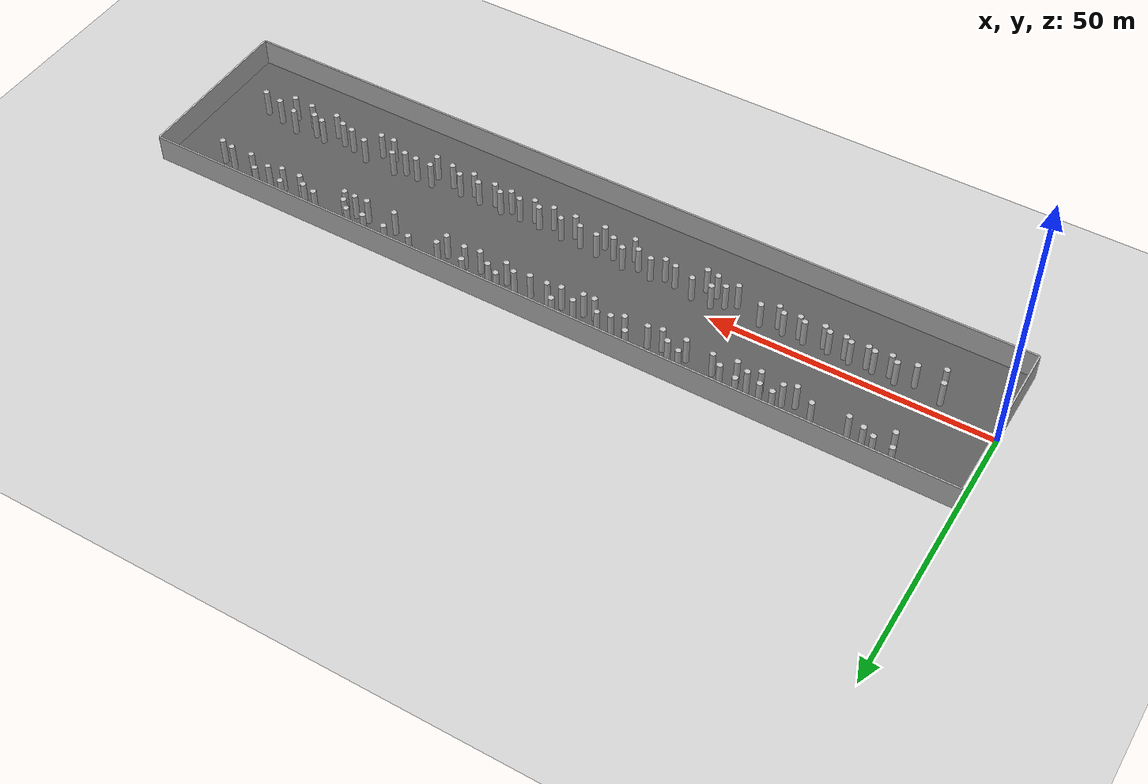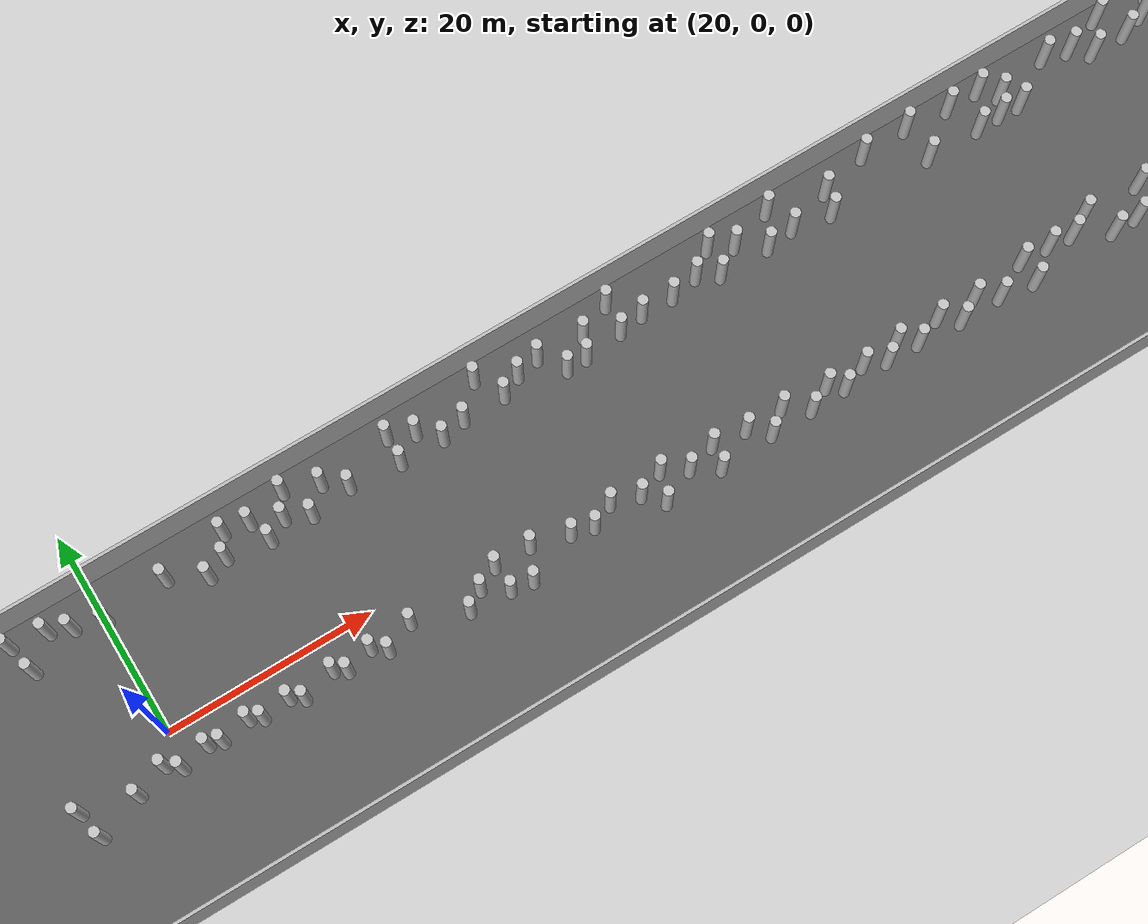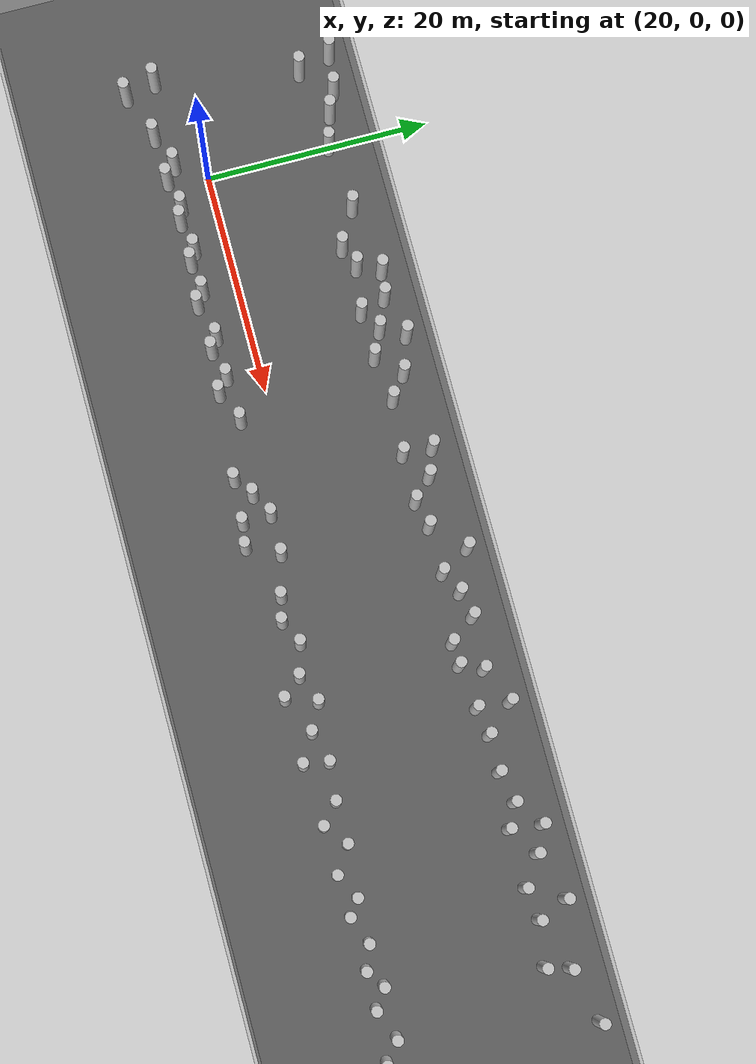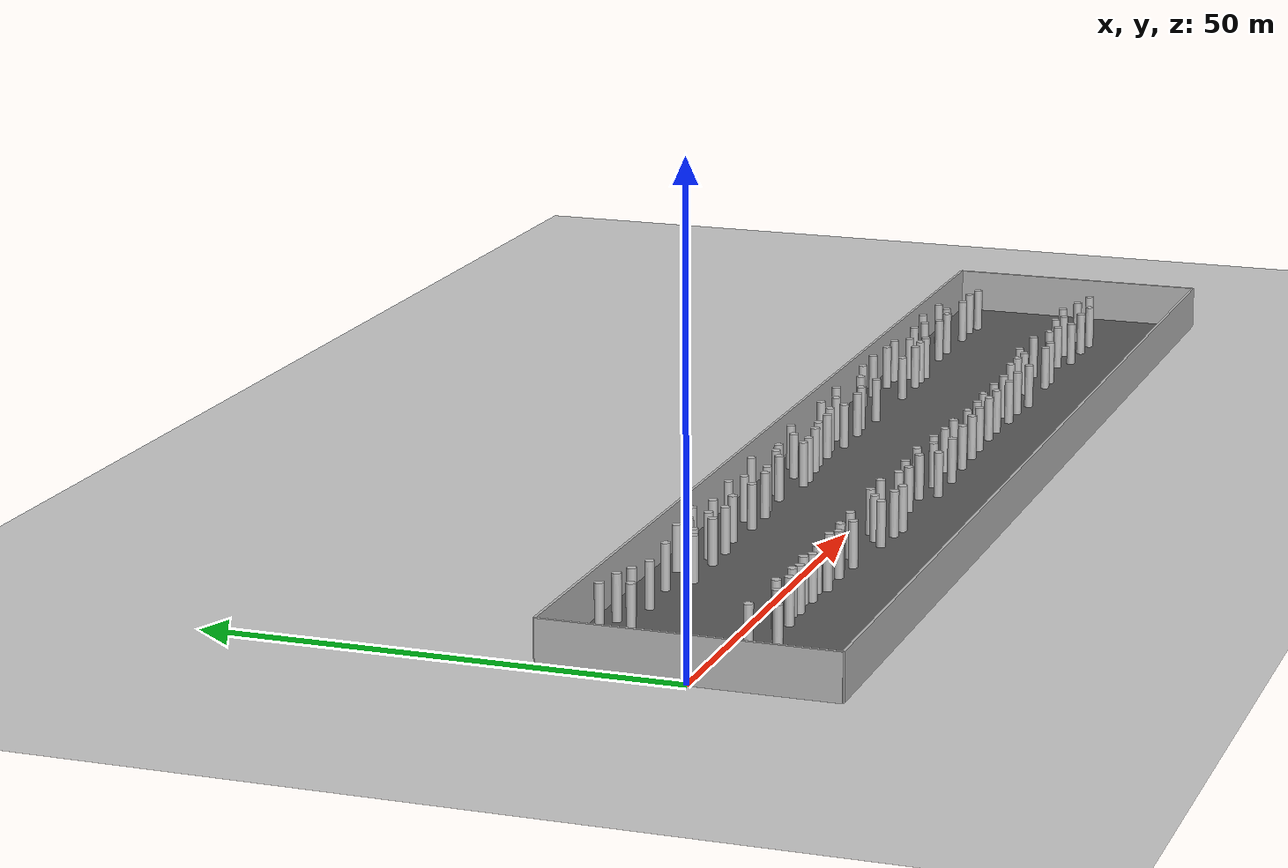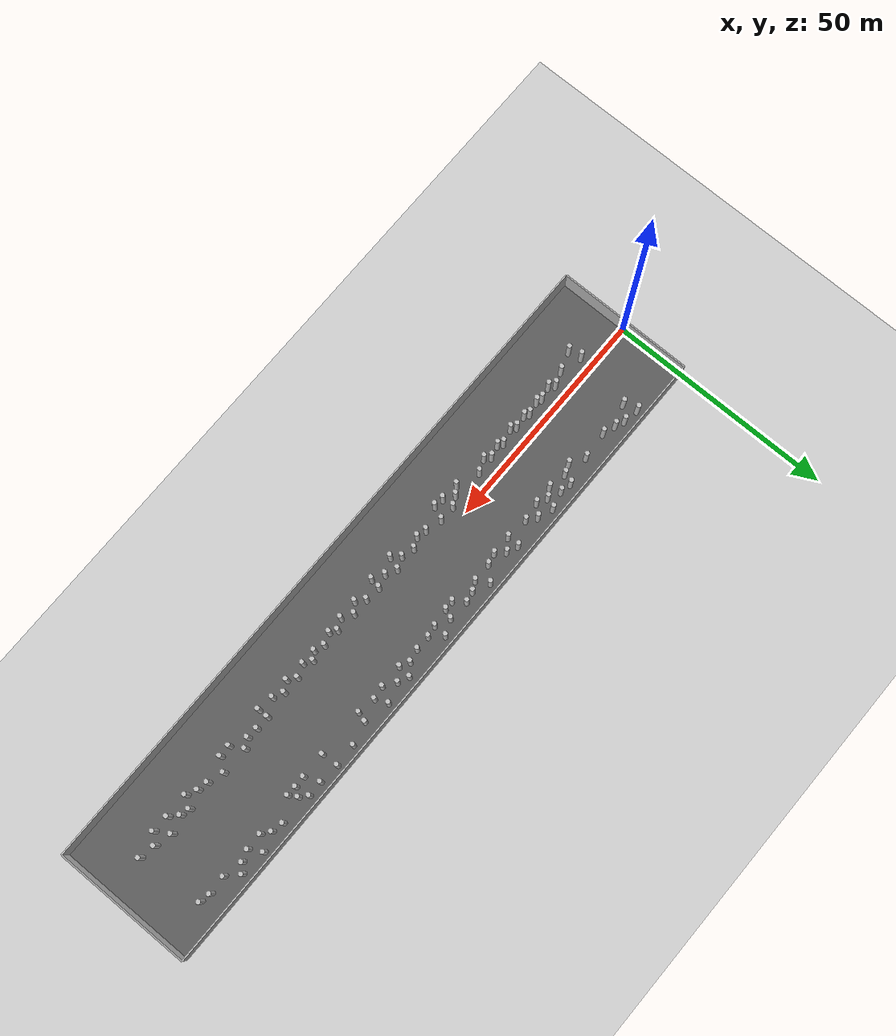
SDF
<?xml version="1.0" ?>
<sdf version="1.5">
  <world name="default">
    <plugin name="gazebo_ros_state" filename="libgazebo_ros_state.so">
      <ros>
        <namespace>/gazebo</namespace>
      </ros>
      <update_rate>20.0</update_rate>
    </plugin>

    <include><uri>model://sun</uri></include>
    <include><uri>model://ground_plane</uri></include>

    <model name="corridor_floor">
      <static>true</static>
      <pose>75 0 0.01 0 0 0</pose>
      <link name="link">
        <collision name="collision">
          <geometry><box><size>150 30 0.02</size></box></geometry>
        </collision>
        <visual name="visual">
          <geometry><box><size>150 30 0.02</size></box></geometry>
          <material>
            <ambient>0.25 0.25 0.25 1</ambient>
            <diffuse>0.35 0.35 0.35 1</diffuse>
          </material>
        </visual>
      </link>
    </model>

    <physics name="default_physics" default="0" type="ode">
      <gravity>0 0 -9.8066</gravity>
      <ode>
        <solver>
          <type>quick</type>
          <iters>10</iters>
          <sor>1.3</sor>
          <use_dynamic_moi_rescaling>0</use_dynamic_moi_rescaling>
        </solver>
        <constraints>
          <cfm>0</cfm>
          <erp>0.2</erp>
          <contact_max_correcting_vel>100</contact_max_correcting_vel>
          <contact_surface_layer>0.001</contact_surface_layer>
        </constraints>
      </ode>
      <max_step_size>0.004</max_step_size>
      <real_time_factor>1</real_time_factor>
      <real_time_update_rate>250</real_time_update_rate>
      <magnetic_field>6.0e-6 2.3e-5 -4.2e-5</magnetic_field>
    </physics>

    <model name="left_wall">
      <static>true</static>
      <pose>75 15.15 2.5 0 0 0</pose>
      <link name="link">
        <collision name="collision">
          <geometry><box><size>150 0.3 5</size></box></geometry>
        </collision>
        <visual name="visual">
          <geometry><box><size>150 0.3 5</size></box></geometry>
        </visual>
      </link>
    </model>

    <model name="right_wall">
      <static>true</static>
      <pose>75 -15.15 2.5 0 0 0</pose>
      <link name="link">
        <collision name="collision">
          <geometry><box><size>150 0.3 5</size></box></geometry>
        </collision>
        <visual name="visual">
          <geometry><box><size>150 0.3 5</size></box></geometry>
        </visual>
      </link>
    </model>

    <model name="start_wall">
      <static>true</static>
      <pose>0 0 2.5 0 0 0</pose>
      <link name="link">
        <collision name="collision">
          <geometry><box><size>0.3 30.3 5</size></box></geometry>
        </collision>
        <visual name="visual">
          <geometry><box><size>0.3 30.3 5</size></box></geometry>
        </visual>
      </link>
    </model>

    <model name="end_wall">
      <static>true</static>
      <pose>150 0 2.5 0 0 0</pose>
      <link name="link">
        <collision name="collision">
          <geometry><box><size>0.3 30.3 5</size></box></geometry>
        </collision>
        <visual name="visual">
          <geometry><box><size>0.3 30.3 5</size></box></geometry>
        </visual>
      </link>
    </model>

    <include><name>cylinder_000</name><uri>model://cylinder_r05_h5</uri><pose>15.530 -3.713 2.5 0 0 0</pose></include>
    <include><name>cylinder_001</name><uri>model://cylinder_r05_h5</uri><pose>18.520 -2.654 2.5 0 0 0</pose></include>
    <include><name>cylinder_002</name><uri>model://cylinder_r05_h5</uri><pose>19.731 -3.589 2.5 0 0 0</pose></include>
    <include><name>cylinder_003</name><uri>model://cylinder_r05_h5</uri><pose>22.476 -2.996 2.5 0 0 0</pose></include>
    <include><name>cylinder_004</name><uri>model://cylinder_r05_h5</uri><pose>23.695 -3.387 2.5 0 0 0</pose></include>
    <include><name>cylinder_005</name><uri>model://cylinder_r05_h5</uri><pose>26.490 -2.865 2.5 0 0 0</pose></include>
    <include><name>cylinder_006</name><uri>model://cylinder_r05_h5</uri><pose>27.580 -3.436 2.5 0 0 0</pose></include>
    <include><name>cylinder_007</name><uri>model://cylinder_r05_h5</uri><pose>30.289 -3.098 2.5 0 0 0</pose></include>
    <include><name>cylinder_008</name><uri>model://cylinder_r05_h5</uri><pose>31.408 -3.833 2.5 0 0 0</pose></include>
    <include><name>cylinder_009</name><uri>model://cylinder_r05_h5</uri><pose>34.617 -2.977 2.5 0 0 0</pose></include>
    <include><name>cylinder_010</name><uri>model://cylinder_r05_h5</uri><pose>35.685 -3.665 2.5 0 0 0</pose></include>
    <include><name>cylinder_011</name><uri>model://cylinder_r05_h5</uri><pose>38.311 -3.001 2.5 0 0 0</pose></include>
    <include><name>cylinder_012</name><uri>model://cylinder_r05_h5</uri><pose>39.546 -3.989 2.5 0 0 0</pose></include>
    <include><name>cylinder_013</name><uri>model://cylinder_r05_h5</uri><pose>42.334 -2.815 2.5 0 0 0</pose></include>
    <include><name>cylinder_014</name><uri>model://cylinder_r05_h5</uri><pose>70.064 -3.796 2.5 0 0 0</pose></include>
    <include><name>cylinder_015</name><uri>model://cylinder_r05_h5</uri><pose>65.189 -3.590 2.5 0 0 0</pose></include>
    <include><name>cylinder_016</name><uri>model://cylinder_r05_h5</uri><pose>60.253 -3.838 2.5 0 0 0</pose></include>
    <include><name>cylinder_017</name><uri>model://cylinder_r05_h5</uri><pose>48.960 -3.444 2.5 0 0 0</pose></include>
    <include><name>cylinder_018</name><uri>model://cylinder_r05_h5</uri><pose>53.235 -5.219 2.5 0 0 0</pose></include>
    <include><name>cylinder_019</name><uri>model://cylinder_r05_h5</uri><pose>72.877 -3.002 2.5 0 0 0</pose></include>
    <include><name>cylinder_020</name><uri>model://cylinder_r05_h5</uri><pose>51.134 -4.910 2.5 0 0 0</pose></include>
    <include><name>cylinder_021</name><uri>model://cylinder_r05_h5</uri><pose>58.144 -3.345 2.5 0 0 0</pose></include>
    <include><name>cylinder_022</name><uri>model://cylinder_r05_h5</uri><pose>51.032 -2.370 2.5 0 0 0</pose></include>
    <include><name>cylinder_023</name><uri>model://cylinder_r05_h5</uri><pose>66.755 -5.290 2.5 0 0 0</pose></include>
    <include><name>cylinder_024</name><uri>model://cylinder_r05_h5</uri><pose>62.463 -2.806 2.5 0 0 0</pose></include>
    <include><name>cylinder_025</name><uri>model://cylinder_r05_h5</uri><pose>47.236 -4.659 2.5 0 0 0</pose></include>
    <include><name>cylinder_026</name><uri>model://cylinder_r05_h5</uri><pose>54.580 -2.402 2.5 0 0 0</pose></include>
    <include><name>cylinder_027</name><uri>model://cylinder_r05_h5</uri><pose>72.503 -5.203 2.5 0 0 0</pose></include>
    <include><name>cylinder_028</name><uri>model://cylinder_r05_h5</uri><pose>67.703 -2.595 2.5 0 0 0</pose></include>
    <include><name>cylinder_029</name><uri>model://cylinder_r05_h5</uri><pose>76.200 -3.347 2.5 0 0 0</pose></include>
    <include><name>cylinder_030</name><uri>model://cylinder_r05_h5</uri><pose>77.964 -4.873 2.5 0 0 0</pose></include>
    <include><name>cylinder_031</name><uri>model://cylinder_r05_h5</uri><pose>79.903 -3.306 2.5 0 0 0</pose></include>
    <include><name>cylinder_032</name><uri>model://cylinder_r05_h5</uri><pose>82.180 -4.809 2.5 0 0 0</pose></include>
    <include><name>cylinder_033</name><uri>model://cylinder_r05_h5</uri><pose>84.408 -3.674 2.5 0 0 0</pose></include>
    <include><name>cylinder_034</name><uri>model://cylinder_r05_h5</uri><pose>85.792 -4.673 2.5 0 0 0</pose></include>
    <include><name>cylinder_035</name><uri>model://cylinder_r05_h5</uri><pose>88.265 -3.727 2.5 0 0 0</pose></include>
    <include><name>cylinder_036</name><uri>model://cylinder_r05_h5</uri><pose>90.380 -4.535 2.5 0 0 0</pose></include>
    <include><name>cylinder_037</name><uri>model://cylinder_r05_h5</uri><pose>91.970 -3.444 2.5 0 0 0</pose></include>
    <include><name>cylinder_038</name><uri>model://cylinder_r05_h5</uri><pose>93.668 -4.562 2.5 0 0 0</pose></include>
    <include><name>cylinder_039</name><uri>model://cylinder_r05_h5</uri><pose>96.356 -3.538 2.5 0 0 0</pose></include>
    <include><name>cylinder_040</name><uri>model://cylinder_r05_h5</uri><pose>98.096 -4.866 2.5 0 0 0</pose></include>
    <include><name>cylinder_041</name><uri>model://cylinder_r05_h5</uri><pose>100.221 -3.642 2.5 0 0 0</pose></include>
    <include><name>cylinder_042</name><uri>model://cylinder_r05_h5</uri><pose>102.346 -4.738 2.5 0 0 0</pose></include>
    <include><name>cylinder_043</name><uri>model://cylinder_r05_h5</uri><pose>132.144 -5.033 2.5 0 0 0</pose></include>
    <include><name>cylinder_044</name><uri>model://cylinder_r05_h5</uri><pose>108.763 -3.047 2.5 0 0 0</pose></include>
    <include><name>cylinder_045</name><uri>model://cylinder_r05_h5</uri><pose>117.213 -4.902 2.5 0 0 0</pose></include>
    <include><name>cylinder_046</name><uri>model://cylinder_r05_h5</uri><pose>126.893 -5.103 2.5 0 0 0</pose></include>
    <include><name>cylinder_047</name><uri>model://cylinder_r05_h5</uri><pose>124.702 -3.943 2.5 0 0 0</pose></include>
    <include><name>cylinder_048</name><uri>model://cylinder_r05_h5</uri><pose>105.801 -3.006 2.5 0 0 0</pose></include>
    <include><name>cylinder_049</name><uri>model://cylinder_r05_h5</uri><pose>122.461 -3.456 2.5 0 0 0</pose></include>
    <include><name>cylinder_050</name><uri>model://cylinder_r05_h5</uri><pose>114.672 -4.957 2.5 0 0 0</pose></include>
    <include><name>cylinder_051</name><uri>model://cylinder_r05_h5</uri><pose>128.393 -2.765 2.5 0 0 0</pose></include>
    <include><name>cylinder_052</name><uri>model://cylinder_r05_h5</uri><pose>130.324 -3.284 2.5 0 0 0</pose></include>
    <include><name>cylinder_053</name><uri>model://cylinder_r05_h5</uri><pose>119.134 -2.351 2.5 0 0 0</pose></include>
    <include><name>cylinder_054</name><uri>model://cylinder_r05_h5</uri><pose>134.058 -2.226 2.5 0 0 0</pose></include>
    <include><name>cylinder_055</name><uri>model://cylinder_r05_h5</uri><pose>113.124 -2.212 2.5 0 0 0</pose></include>
    <include><name>cylinder_056</name><uri>model://cylinder_r05_h5</uri><pose>105.840 -5.235 2.5 0 0 0</pose></include>
    <include><name>cylinder_057</name><uri>model://cylinder_r05_h5</uri><pose>111.198 -3.271 2.5 0 0 0</pose></include>
    <include><name>cylinder_058</name><uri>model://cylinder_r05_h5</uri><pose>11.251 -5.183 2.5 0 0 0</pose></include>
    <include><name>cylinder_059</name><uri>model://cylinder_r05_h5</uri><pose>10.583 -2.464 2.5 0 0 0</pose></include>
    <include><name>cylinder_060</name><uri>model://cylinder_r05_h5</uri><pose>137.758 -3.205 2.5 0 0 0</pose></include>
    <include><name>cylinder_061</name><uri>model://cylinder_r05_h5</uri><pose>141.236 -3.876 2.5 0 0 0</pose></include>
    <include><name>cylinder_062</name><uri>model://cylinder_r05_h5</uri><pose>135.865 -5.212 2.5 0 0 0</pose></include>
    <include><name>cylinder_063</name><uri>model://cylinder_r05_h5</uri><pose>53.140 9.930 2.5 0 0 0</pose></include>
    <include><name>cylinder_064</name><uri>model://cylinder_r05_h5</uri><pose>77.364 10.607 2.5 0 0 0</pose></include>
    <include><name>cylinder_065</name><uri>model://cylinder_r05_h5</uri><pose>41.950 11.928 2.5 0 0 0</pose></include>
    <include><name>cylinder_066</name><uri>model://cylinder_r05_h5</uri><pose>12.070 13.210 2.5 0 0 0</pose></include>
    <include><name>cylinder_067</name><uri>model://cylinder_r05_h5</uri><pose>74.137 10.630 2.5 0 0 0</pose></include>
    <include><name>cylinder_068</name><uri>model://cylinder_r05_h5</uri><pose>17.467 11.851 2.5 0 0 0</pose></include>
    <include><name>cylinder_069</name><uri>model://cylinder_r05_h5</uri><pose>121.620 12.026 2.5 0 0 0</pose></include>
    <include><name>cylinder_070</name><uri>model://cylinder_r05_h5</uri><pose>71.852 13.114 2.5 0 0 0</pose></include>
    <include><name>cylinder_071</name><uri>model://cylinder_r05_h5</uri><pose>90.075 10.524 2.5 0 0 0</pose></include>
    <include><name>cylinder_072</name><uri>model://cylinder_r05_h5</uri><pose>29.629 9.715 2.5 0 0 0</pose></include>
    <include><name>cylinder_073</name><uri>model://cylinder_r05_h5</uri><pose>20.236 11.000 2.5 0 0 0</pose></include>
    <include><name>cylinder_074</name><uri>model://cylinder_r05_h5</uri><pose>93.957 9.886 2.5 0 0 0</pose></include>
    <include><name>cylinder_075</name><uri>model://cylinder_r05_h5</uri><pose>58.181 13.162 2.5 0 0 0</pose></include>
    <include><name>cylinder_076</name><uri>model://cylinder_r05_h5</uri><pose>84.726 11.846 2.5 0 0 0</pose></include>
    <include><name>cylinder_077</name><uri>model://cylinder_r05_h5</uri><pose>55.551 10.483 2.5 0 0 0</pose></include>
    <include><name>cylinder_078</name><uri>model://cylinder_r05_h5</uri><pose>64.027 11.997 2.5 0 0 0</pose></include>
    <include><name>cylinder_079</name><uri>model://cylinder_r05_h5</uri><pose>12.887 10.253 2.5 0 0 0</pose></include>
    <include><name>cylinder_080</name><uri>model://cylinder_r05_h5</uri><pose>82.178 10.110 2.5 0 0 0</pose></include>
    <include><name>cylinder_081</name><uri>model://cylinder_r05_h5</uri><pose>32.515 12.544 2.5 0 0 0</pose></include>
    <include><name>cylinder_082</name><uri>model://cylinder_r05_h5</uri><pose>48.938 12.600 2.5 0 0 0</pose></include>
    <include><name>cylinder_083</name><uri>model://cylinder_r05_h5</uri><pose>67.785 9.765 2.5 0 0 0</pose></include>
    <include><name>cylinder_084</name><uri>model://cylinder_r05_h5</uri><pose>65.782 9.717 2.5 0 0 0</pose></include>
    <include><name>cylinder_085</name><uri>model://cylinder_r05_h5</uri><pose>104.263 13.351 2.5 0 0 0</pose></include>
    <include><name>cylinder_086</name><uri>model://cylinder_r05_h5</uri><pose>133.684 10.537 2.5 0 0 0</pose></include>
    <include><name>cylinder_087</name><uri>model://cylinder_r05_h5</uri><pose>104.485 9.812 2.5 0 0 0</pose></include>
    <include><name>cylinder_088</name><uri>model://cylinder_r05_h5</uri><pose>119.084 12.584 2.5 0 0 0</pose></include>
    <include><name>cylinder_089</name><uri>model://cylinder_r05_h5</uri><pose>131.178 12.925 2.5 0 0 0</pose></include>
    <include><name>cylinder_090</name><uri>model://cylinder_r05_h5</uri><pose>112.425 9.921 2.5 0 0 0</pose></include>
    <include><name>cylinder_091</name><uri>model://cylinder_r05_h5</uri><pose>71.656 10.231 2.5 0 0 0</pose></include>
    <include><name>cylinder_092</name><uri>model://cylinder_r05_h5</uri><pose>43.954 10.426 2.5 0 0 0</pose></include>
    <include><name>cylinder_093</name><uri>model://cylinder_r05_h5</uri><pose>26.311 11.525 2.5 0 0 0</pose></include>
    <include><name>cylinder_094</name><uri>model://cylinder_r05_h5</uri><pose>137.713 10.734 2.5 0 0 0</pose></include>
    <include><name>cylinder_095</name><uri>model://cylinder_r05_h5</uri><pose>108.714 12.972 2.5 0 0 0</pose></include>
    <include><name>cylinder_096</name><uri>model://cylinder_r05_h5</uri><pose>59.753 10.527 2.5 0 0 0</pose></include>
    <include><name>cylinder_097</name><uri>model://cylinder_r05_h5</uri><pose>82.476 12.928 2.5 0 0 0</pose></include>
    <include><name>cylinder_098</name><uri>model://cylinder_r05_h5</uri><pose>87.250 10.118 2.5 0 0 0</pose></include>
    <include><name>cylinder_099</name><uri>model://cylinder_r05_h5</uri><pose>129.466 11.449 2.5 0 0 0</pose></include>
    <include><name>cylinder_100</name><uri>model://cylinder_r05_h5</uri><pose>34.945 12.095 2.5 0 0 0</pose></include>
    <include><name>cylinder_101</name><uri>model://cylinder_r05_h5</uri><pose>35.735 9.801 2.5 0 0 0</pose></include>
    <include><name>cylinder_102</name><uri>model://cylinder_r05_h5</uri><pose>99.441 13.165 2.5 0 0 0</pose></include>
    <include><name>cylinder_103</name><uri>model://cylinder_r05_h5</uri><pose>123.364 10.647 2.5 0 0 0</pose></include>
    <include><name>cylinder_104</name><uri>model://cylinder_r05_h5</uri><pose>88.953 13.162 2.5 0 0 0</pose></include>
    <include><name>cylinder_105</name><uri>model://cylinder_r05_h5</uri><pose>114.573 9.847 2.5 0 0 0</pose></include>
    <include><name>cylinder_106</name><uri>model://cylinder_r05_h5</uri><pose>110.010 9.826 2.5 0 0 0</pose></include>
    <include><name>cylinder_107</name><uri>model://cylinder_r05_h5</uri><pose>140.059 10.256 2.5 0 0 0</pose></include>
    <include><name>cylinder_108</name><uri>model://cylinder_r05_h5</uri><pose>112.010 13.030 2.5 0 0 0</pose></include>
    <include><name>cylinder_109</name><uri>model://cylinder_r05_h5</uri><pose>38.683 13.073 2.5 0 0 0</pose></include>
    <include><name>cylinder_110</name><uri>model://cylinder_r05_h5</uri><pose>125.497 13.333 2.5 0 0 0</pose></include>
    <include><name>cylinder_111</name><uri>model://cylinder_r05_h5</uri><pose>68.627 11.718 2.5 0 0 0</pose></include>
    <include><name>cylinder_112</name><uri>model://cylinder_r05_h5</uri><pose>37.656 10.931 2.5 0 0 0</pose></include>
    <include><name>cylinder_113</name><uri>model://cylinder_r05_h5</uri><pose>51.337 11.648 2.5 0 0 0</pose></include>
    <include><name>cylinder_114</name><uri>model://cylinder_r05_h5</uri><pose>31.665 10.471 2.5 0 0 0</pose></include>
    <include><name>cylinder_115</name><uri>model://cylinder_r05_h5</uri><pose>15.491 12.691 2.5 0 0 0</pose></include>
    <include><name>cylinder_116</name><uri>model://cylinder_r05_h5</uri><pose>127.030 10.687 2.5 0 0 0</pose></include>
    <include><name>cylinder_117</name><uri>model://cylinder_r05_h5</uri><pose>113.557 11.587 2.5 0 0 0</pose></include>
    <include><name>cylinder_118</name><uri>model://cylinder_r05_h5</uri><pose>94.583 11.961 2.5 0 0 0</pose></include>
    <include><name>cylinder_119</name><uri>model://cylinder_r05_h5</uri><pose>61.747 11.526 2.5 0 0 0</pose></include>
    <include><name>cylinder_120</name><uri>model://cylinder_r05_h5</uri><pose>48.851 9.966 2.5 0 0 0</pose></include>
    <include><name>cylinder_121</name><uri>model://cylinder_r05_h5</uri><pose>80.145 11.175 2.5 0 0 0</pose></include>
    <include><name>cylinder_122</name><uri>model://cylinder_r05_h5</uri><pose>39.916 9.859 2.5 0 0 0</pose></include>

  </world>
</sdf>

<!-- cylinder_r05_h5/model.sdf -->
<sdf version="1.5">
  <model name="cylinder_r05_h5">
    <static>true</static>
    <link name="link">
      <collision name="collision">
        <geometry>
          <cylinder>
            <radius>0.5</radius>
            <length>5</length>
          </cylinder>
        </geometry>
      </collision>
      <visual name="visual">
        <geometry>
          <cylinder>
            <radius>0.5</radius>
            <length>5</length>
          </cylinder>
        </geometry>
        <material>
          <ambient>0.5 0.5 0.5 1</ambient>
          <diffuse>0.75 0.75 0.75 1</diffuse>
        </material>
      </visual>
    </link>
  </model>
</sdf>
